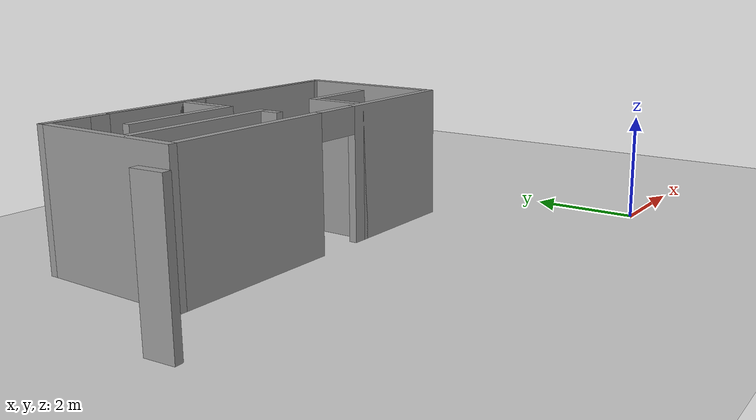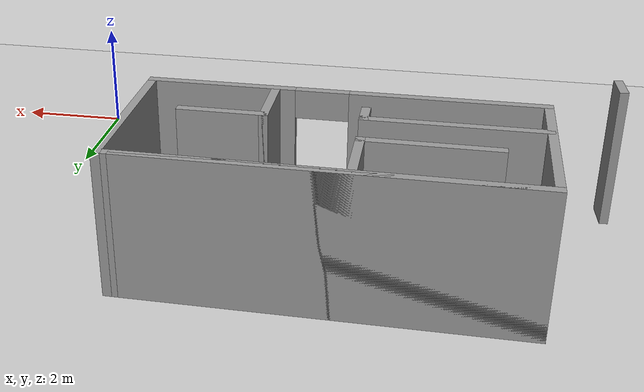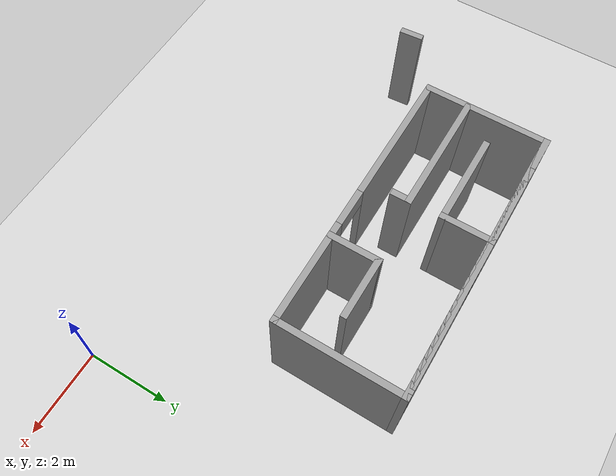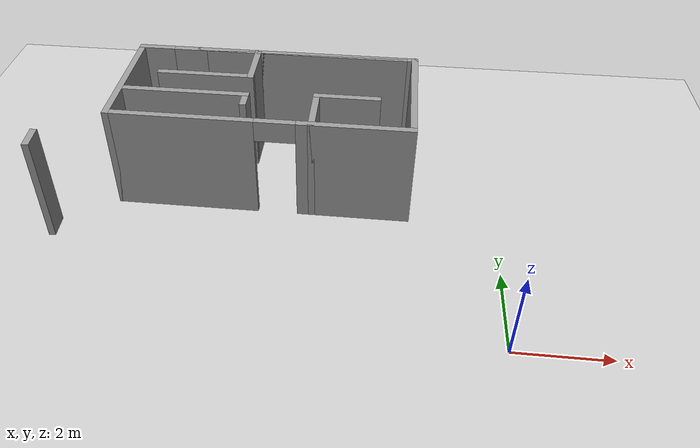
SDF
<sdf version="1.7">
 <world name="default">
  <light name="sun" type="directional">
   <pose>0 0 10 0 -0 0</pose>
   <diffuse>0.8 0.8 0.8 1</diffuse>
   <specular>0.2 0.2 0.2 1</specular>
   <attenuation>
    <range>1000</range>
    <constant>0.9</constant>
    <linear>0.01</linear>
    <quadratic>0.001</quadratic>
   </attenuation>
   <direction>-0.5 0.1 -0.9</direction>
   <spot><inner_angle>0</inner_angle><outer_angle>0</outer_angle><falloff>0</falloff></spot>
  </light>
  <model name="ground_plane">
   <static>1</static>
   <link name="link">
    <collision name="collision">
     <geometry><plane><normal>0 0 1</normal><size>100 100</size></plane></geometry>
     <surface><friction><ode><mu>100</mu><mu2>50</mu2></ode></friction></surface>
    </collision>
    <visual name="visual">
     <cast_shadows>0</cast_shadows>
     <geometry><plane><normal>0 0 1</normal><size>100 100</size></plane></geometry>
     <material>
      <script><uri>file://media/materials/scripts/gazebo.material</uri><name>Gazebo/Grey</name></script>
     </material>
    </visual>
   </link>
  </model>
  <gravity>0 0 -9.8</gravity>
  <magnetic_field>6e-06 2.3e-05 -4.2e-05</magnetic_field>
  <atmosphere type="adiabatic"/>
  <physics type="ode">
   <max_step_size>0.001</max_step_size>
   <real_time_factor>1</real_time_factor>
   <real_time_update_rate>1000</real_time_update_rate>
  </physics>
  <scene><ambient>0.4 0.4 0.4 1</ambient><background>0.7 0.7 0.7 1</background><shadows>1</shadows></scene>
  <spherical_coordinates>
   <surface_model>EARTH_WGS84</surface_model>
   <latitude_deg>0</latitude_deg>
   <longitude_deg>0</longitude_deg>
   <elevation>0</elevation>
   <heading_deg>0</heading_deg>
  </spherical_coordinates>
  <model name="room">
   <pose>-5.95729 4.90423 0 0 -0 0</pose>
   <link name="Wall_11">
    <collision name="Wall_11_Collision">
     <geometry><box><size>0.551123 0.15 2.5</size></box></geometry>
     <pose>0 0 1.25 0 -0 0</pose>
    </collision>
    <visual name="Wall_11_Visual">
     <pose>0 0 1.25 0 -0 0</pose>
     <geometry><box><size>0.551123 0.15 2.5</size></box></geometry>
     <material>
      <script><uri>file://media/materials/scripts/gazebo.material</uri><name>Gazebo/Grey</name></script>
      <ambient>1 1 1 1</ambient>
     </material>
     <meta><layer>0</layer></meta>
    </visual>
    <pose>-3.9123 -2.4398 0 0 -0 1.64566</pose>
   </link>
   <link name="Wall_15">
    <collision name="Wall_15_Collision">
     <geometry><box><size>5.25 0.15 2.5</size></box></geometry>
     <pose>0 0 1.25 0 -0 0</pose>
    </collision>
    <visual name="Wall_15_Visual">
     <pose>0 0 1.25 0 -0 0</pose>
     <geometry><box><size>5.25 0.15 2.5</size></box></geometry>
     <material>
      <script><uri>file://media/materials/scripts/gazebo.material</uri><name>Gazebo/Grey</name></script>
      <ambient>1 1 1 1</ambient>
     </material>
     <meta><layer>0</layer></meta>
    </visual>
    <pose>1.1327 1.4902 0 0 -0 0</pose>
   </link>
   <link name="Wall_16">
    <collision name="Wall_16_Collision">
     <geometry><box><size>6.5 0.15 2.5</size></box></geometry>
     <pose>0 0 1.25 0 -0 0</pose>
    </collision>
    <visual name="Wall_16_Visual">
     <pose>0 0 1.25 0 -0 0</pose>
     <geometry><box><size>6.5 0.15 2.5</size></box></geometry>
     <material>
      <script><uri>file://media/materials/scripts/gazebo.material</uri><name>Gazebo/Grey</name></script>
      <ambient>1 1 1 1</ambient>
     </material>
     <meta><layer>0</layer></meta>
    </visual>
    <pose>0.5077 1.4902 0 0 -0 3.14159</pose>
   </link>
   <link name="Wall_17">
    <collision name="Wall_17_Collision">
     <geometry><box><size>3 0.15 2.5</size></box></geometry>
     <pose>0 0 1.25 0 -0 0</pose>
    </collision>
    <visual name="Wall_17_Visual">
     <pose>0 0 1.25 0 -0 0</pose>
     <geometry><box><size>3 0.15 2.5</size></box></geometry>
     <material>
      <script><uri>file://media/materials/scripts/gazebo.material</uri><name>Gazebo/Grey</name></script>
      <ambient>1 1 1 1</ambient>
     </material>
     <meta><layer>0</layer></meta>
    </visual>
    <pose>-2.6673 0.0652 0 0 -0 -1.5708</pose>
   </link>
   <link name="Wall_18">
    <pose>0.6327 -1.3598 0 0 -0 0</pose>
    <visual name="Wall_18_Visual_0">
     <pose>-1.7275 0 1.25 0 -0 0</pose>
     <geometry><box><size>3.295 0.15 2.5</size></box></geometry>
     <material>
      <script><uri>file://media/materials/scripts/gazebo.material</uri><name>Gazebo/Grey</name></script>
      <ambient>1 1 1 1</ambient>
     </material>
     <meta><layer>0</layer></meta>
    </visual>
    <collision name="Wall_18_Collision_0">
     <geometry><box><size>3.295 0.15 2.5</size></box></geometry>
     <pose>-1.7275 0 1.25 0 -0 0</pose>
    </collision>
    <visual name="Wall_18_Visual_1">
     <pose>2.0975 0 1.25 0 -0 0</pose>
     <geometry><box><size>2.555 0.15 2.5</size></box></geometry>
     <material>
      <script><uri>file://media/materials/scripts/gazebo.material</uri><name>Gazebo/Grey</name></script>
      <ambient>1 1 1 1</ambient>
     </material>
     <meta><layer>0</layer></meta>
    </visual>
    <collision name="Wall_18_Collision_1">
     <geometry><box><size>2.555 0.15 2.5</size></box></geometry>
     <pose>2.0975 0 1.25 0 -0 0</pose>
    </collision>
    <visual name="Wall_18_Visual_2">
     <pose>0.37 0 2.25 0 -0 0</pose>
     <geometry><box><size>0.9 0.15 0.5</size></box></geometry>
     <material>
      <script><uri>file://media/materials/scripts/gazebo.material</uri><name>Gazebo/Grey</name></script>
      <ambient>1 1 1 1</ambient>
     </material>
     <meta><layer>0</layer></meta>
    </visual>
    <collision name="Wall_18_Collision_2">
     <geometry><box><size>0.9 0.15 0.5</size></box></geometry>
     <pose>0.37 0 2.25 0 -0 0</pose>
    </collision>
   </link>
   <link name="Wall_19">
    <collision name="Wall_19_Collision">
     <geometry><box><size>3 0.15 2.5</size></box></geometry>
     <pose>0 0 1.25 0 -0 0</pose>
    </collision>
    <visual name="Wall_19_Visual">
     <pose>0 0 1.25 0 -0 0</pose>
     <geometry><box><size>3 0.15 2.5</size></box></geometry>
     <material>
      <script><uri>file://media/materials/scripts/gazebo.material</uri><name>Gazebo/Grey</name></script>
      <ambient>1 1 1 1</ambient>
     </material>
     <meta><layer>0</layer></meta>
    </visual>
    <pose>3.9327 0.0652 0 0 -0 1.5708</pose>
   </link>
   <link name="Wall_20">
    <collision name="Wall_20_Collision">
     <geometry><box><size>6.75 0.15 2.5</size></box></geometry>
     <pose>0 0 1.25 0 -0 0</pose>
    </collision>
    <visual name="Wall_20_Visual">
     <pose>0 0 1.25 0 -0 0</pose>
     <geometry><box><size>6.75 0.15 2.5</size></box></geometry>
     <material>
      <script><uri>file://media/materials/scripts/gazebo.material</uri><name>Gazebo/Grey</name></script>
      <ambient>1 1 1 1</ambient>
     </material>
     <meta><layer>0</layer></meta>
    </visual>
    <pose>0.6327 1.4902 0 0 -0 3.14159</pose>
   </link>
   <link name="Wall_21">
    <pose>-1.2423 1.4902 0 0 -0 0</pose>
    <visual name="Wall_21_Visual_0">
     <pose>-1.0625 0 1.25 0 -0 0</pose>
     <geometry><box><size>0.875 0.15 2.5</size></box></geometry>
     <material>
      <script><uri>file://media/materials/scripts/gazebo.material</uri><name>Gazebo/Grey</name></script>
      <ambient>1 1 1 1</ambient>
     </material>
     <meta><layer>0</layer></meta>
    </visual>
    <collision name="Wall_21_Collision_0">
     <geometry><box><size>0.875 0.15 2.5</size></box></geometry>
     <pose>-1.0625 0 1.25 0 -0 0</pose>
    </collision>
    <visual name="Wall_21_Visual_1">
     <pose>0.4375 0 0.25 0 -0 0</pose>
     <geometry><box><size>2.125 0.15 0.5</size></box></geometry>
     <material>
      <script><uri>file://media/materials/scripts/gazebo.material</uri><name>Gazebo/Grey</name></script>
      <ambient>1 1 1 1</ambient>
     </material>
     <meta><layer>0</layer></meta>
    </visual>
    <collision name="Wall_21_Collision_1">
     <geometry><box><size>2.125 0.15 0.5</size></box></geometry>
     <pose>0.4375 0 0.25 0 -0 0</pose>
    </collision>
    <visual name="Wall_21_Visual_2">
     <pose>0.8375 0 1.5 0 -0 0</pose>
     <geometry><box><size>1.325 0.15 2</size></box></geometry>
     <material>
      <script><uri>file://media/materials/scripts/gazebo.material</uri><name>Gazebo/Grey</name></script>
      <ambient>1 1 1 1</ambient>
     </material>
     <meta><layer>0</layer></meta>
    </visual>
    <collision name="Wall_21_Collision_2">
     <geometry><box><size>1.325 0.15 2</size></box></geometry>
     <pose>0.8375 0 1.5 0 -0 0</pose>
    </collision>
    <visual name="Wall_21_Visual_3">
     <pose>-0.225 0 1.9 0 -0 0</pose>
     <geometry><box><size>0.8 0.15 1.2</size></box></geometry>
     <material>
      <script><uri>file://media/materials/scripts/gazebo.material</uri><name>Gazebo/Grey</name></script>
      <ambient>1 1 1 1</ambient>
     </material>
     <meta><layer>0</layer></meta>
    </visual>
    <collision name="Wall_21_Collision_3">
     <geometry><box><size>0.8 0.15 1.2</size></box></geometry>
     <pose>-0.225 0 1.9 0 -0 0</pose>
    </collision>
   </link>
   <link name="Wall_22">
    <collision name="Wall_22_Collision">
     <geometry><box><size>1.25 0.15 2.5</size></box></geometry>
     <pose>0 0 1.25 0 -0 0</pose>
    </collision>
    <visual name="Wall_22_Visual">
     <pose>0 0 1.25 0 -0 0</pose>
     <geometry><box><size>1.25 0.15 2.5</size></box></geometry>
     <material>
      <script><uri>file://media/materials/scripts/gazebo.material</uri><name>Gazebo/Grey</name></script>
      <ambient>1 1 1 1</ambient>
     </material>
     <meta><layer>0</layer></meta>
    </visual>
    <pose>0.1827 0.9402 0 0 -0 -1.5708</pose>
   </link>
   <link name="Wall_23">
    <collision name="Wall_23_Collision">
     <geometry><box><size>2.25 0.15 2.5</size></box></geometry>
     <pose>0 0 1.25 0 -0 0</pose>
    </collision>
    <visual name="Wall_23_Visual">
     <pose>0 0 1.25 0 -0 0</pose>
     <geometry><box><size>2.25 0.15 2.5</size></box></geometry>
     <material>
      <script><uri>file://media/materials/scripts/gazebo.material</uri><name>Gazebo/Grey</name></script>
      <ambient>1 1 1 1</ambient>
     </material>
     <meta><layer>0</layer></meta>
    </visual>
    <pose>-0.8673 0.3902 0 0 -0 3.14159</pose>
   </link>
   <link name="Wall_25">
    <collision name="Wall_25_Collision">
     <geometry><box><size>3 0.15 2.5</size></box></geometry>
     <pose>0 0 1.25 0 -0 0</pose>
    </collision>
    <visual name="Wall_25_Visual">
     <pose>0 0 1.25 0 -0 0</pose>
     <geometry><box><size>3 0.15 2.5</size></box></geometry>
     <material>
      <script><uri>file://media/materials/scripts/gazebo.material</uri><name>Gazebo/Grey</name></script>
      <ambient>1 1 1 1</ambient>
     </material>
     <meta><layer>0</layer></meta>
    </visual>
    <pose>-1.2123 -0.3798 0 0 -0 0</pose>
   </link>
   <link name="Wall_26">
    <collision name="Wall_26_Collision">
     <geometry><box><size>0.5 0.15 2.5</size></box></geometry>
     <pose>0 0 1.25 0 -0 0</pose>
    </collision>
    <visual name="Wall_26_Visual">
     <pose>0 0 1.25 0 -0 0</pose>
     <geometry><box><size>0.5 0.15 2.5</size></box></geometry>
     <material>
      <script><uri>file://media/materials/scripts/gazebo.material</uri><name>Gazebo/Grey</name></script>
      <ambient>1 1 1 1</ambient>
     </material>
     <meta><layer>0</layer></meta>
    </visual>
    <pose>0.2127 -0.554801 0 0 -0 -1.5708</pose>
   </link>
   <link name="Wall_28">
    <collision name="Wall_28_Collision">
     <geometry><box><size>1.25 0.15 2.5</size></box></geometry>
     <pose>0 0 1.25 0 -0 0</pose>
    </collision>
    <visual name="Wall_28_Visual">
     <pose>0 0 1.25 0 -0 0</pose>
     <geometry><box><size>1.25 0.15 2.5</size></box></geometry>
     <material>
      <script><uri>file://media/materials/scripts/gazebo.material</uri><name>Gazebo/Grey</name></script>
      <ambient>1 1 1 1</ambient>
     </material>
     <meta><layer>0</layer></meta>
    </visual>
    <pose>1.7827 -0.8098 0 0 -0 1.5708</pose>
   </link>
   <link name="Wall_29">
    <collision name="Wall_29_Collision">
     <geometry><box><size>1.5 0.15 2.5</size></box></geometry>
     <pose>0 0 1.25 0 -0 0</pose>
    </collision>
    <visual name="Wall_29_Visual">
     <pose>0 0 1.25 0 -0 0</pose>
     <geometry><box><size>1.5 0.15 2.5</size></box></geometry>
     <material>
      <script><uri>file://media/materials/scripts/gazebo.material</uri><name>Gazebo/Grey</name></script>
      <ambient>1 1 1 1</ambient>
     </material>
     <meta><layer>0</layer></meta>
    </visual>
    <pose>2.4577 -0.2598 0 0 -0 0</pose>
   </link>
   <static>1</static>
  </model>
 </world>
</sdf>
